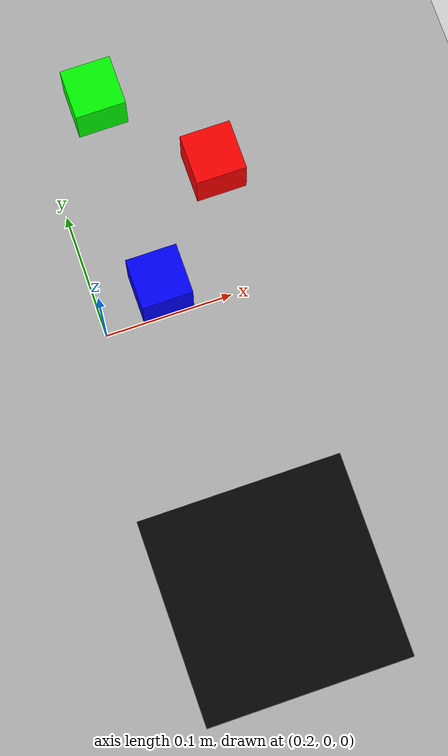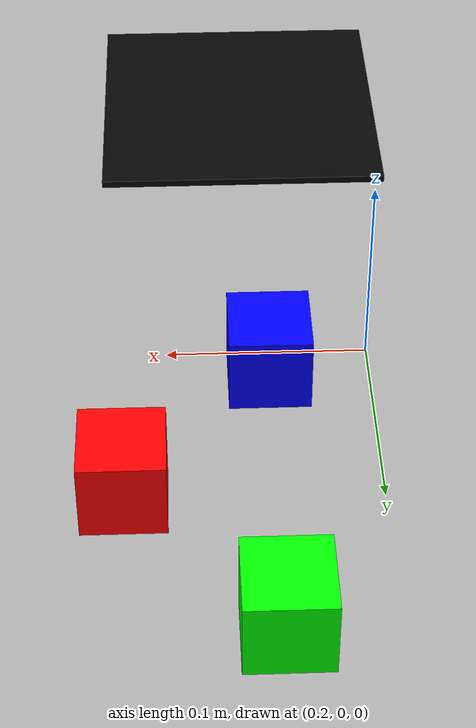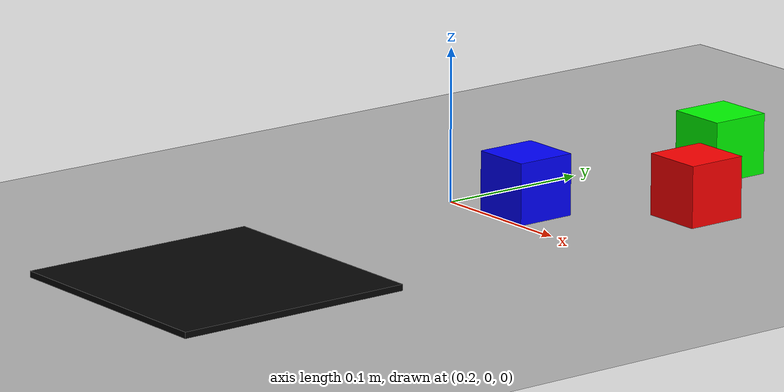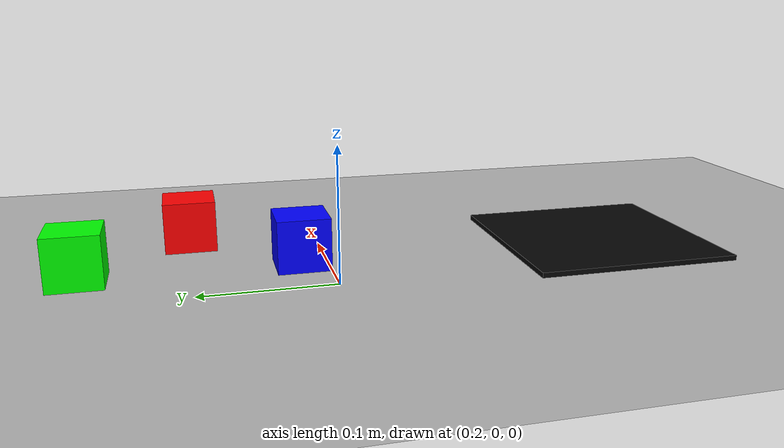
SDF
<?xml version="1.0" ?>
<sdf version="1.9">
  <world name="so101_world">

    <plugin filename="gz-sim-physics-system" name="gz::sim::systems::Physics"/>
    <plugin filename="gz-sim-user-commands-system" name="gz::sim::systems::UserCommands"/>
    <plugin filename="gz-sim-scene-broadcaster-system" name="gz::sim::systems::SceneBroadcaster"/>

    <gravity>0 0 -9.81</gravity>

    <light type="directional" name="sun">
      <cast_shadows>true</cast_shadows>
      <pose>0 0 10 0 0 0</pose>
      <diffuse>0.8 0.8 0.8 1</diffuse>
      <specular>0.2 0.2 0.2 1</specular>
      <direction>-0.5 0.1 -0.9</direction>
    </light>

    <model name="ground_plane">
      <static>true</static>
      <link name="link">
        <collision name="collision">
          <geometry>
            <plane>
              <normal>0 0 1</normal>
              <size>5 5</size>
            </plane>
          </geometry>
        </collision>
        <visual name="visual">
          <geometry>
            <plane>
              <normal>0 0 1</normal>
              <size>5 5</size>
            </plane>
          </geometry>
          <material>
            <ambient>0.7 0.7 0.7 1</ambient>
            <diffuse>0.7 0.7 0.7 1</diffuse>
          </material>
        </visual>
      </link>
    </model>

    <model name="pick_cube">
      <static>true</static>
      <pose>0.32 0.10 0.020 0 0 0</pose>

      <link name="link">
        <inertial>
          <mass>0.01</mass>
          <inertia>
            <ixx>0.00002</ixx>
            <iyy>0.00002</iyy>
            <izz>0.00002</izz>
            <ixy>0</ixy>
            <ixz>0</ixz>
            <iyz>0</iyz>
          </inertia>
        </inertial>

        <collision name="collision">
          <geometry>
            <box>
              <size>0.001 0.001 0.001</size>
            </box>
          </geometry>
        </collision>

        <visual name="visual">
          <geometry>
            <box>
              <size>0.04 0.04 0.04</size>
            </box>
          </geometry>
          <material>
            <ambient>1 0 0 1</ambient>
            <diffuse>1 0 0 1</diffuse>
          </material>
        </visual>
      </link>
    </model>

    <!-- V6 distractor cube: BLUE -->
    <model name="blue_cube">
      <static>true</static>
      <pose>0.25 0.02 0.020 0 0 0</pose>

      <link name="link">
        <collision name="collision">
          <geometry>
            <box>
              <size>0.001 0.001 0.001</size>
            </box>
          </geometry>
        </collision>

        <visual name="visual">
          <geometry>
            <box>
              <size>0.04 0.04 0.04</size>
            </box>
          </geometry>
          <material>
            <ambient>0 0 1 1</ambient>
            <diffuse>0 0 1 1</diffuse>
          </material>
        </visual>
      </link>
    </model>

    <!-- V6 distractor cube: GREEN -->
    <model name="green_cube">
      <static>true</static>
      <pose>0.25 0.18 0.020 0 0 0</pose>

      <link name="link">
        <collision name="collision">
          <geometry>
            <box>
              <size>0.001 0.001 0.001</size>
            </box>
          </geometry>
        </collision>

        <visual name="visual">
          <geometry>
            <box>
              <size>0.04 0.04 0.04</size>
            </box>
          </geometry>
          <material>
            <ambient>0 1 0 1</ambient>
            <diffuse>0 1 0 1</diffuse>
          </material>
        </visual>
      </link>
    </model>

    <!-- V8 visible drop target zone -->
    <model name="drop_zone_pad">
      <static>true</static>
      <pose>0.256 -0.224 0.002 0 0 0</pose>

      <link name="link">
        <visual name="visual">
          <geometry>
            <box>
              <size>0.16 0.16 0.004</size>
            </box>
          </geometry>
          <material>
            <ambient>0.02 0.02 0.02 1</ambient>
            <diffuse>0.02 0.02 0.02 1</diffuse>
          </material>
        </visual>
      </link>
    </model>

    <plugin
      filename="gz-sim-sensors-system"
      name="gz::sim::systems::Sensors">
      <render_engine>ogre2</render_engine>
    </plugin>

</world>
</sdf>
